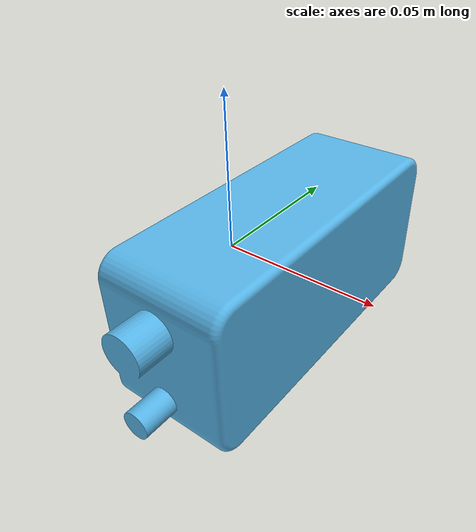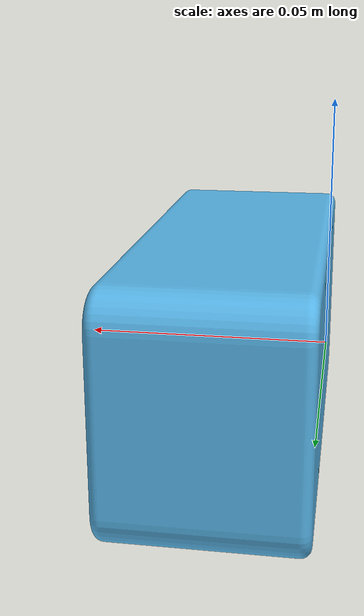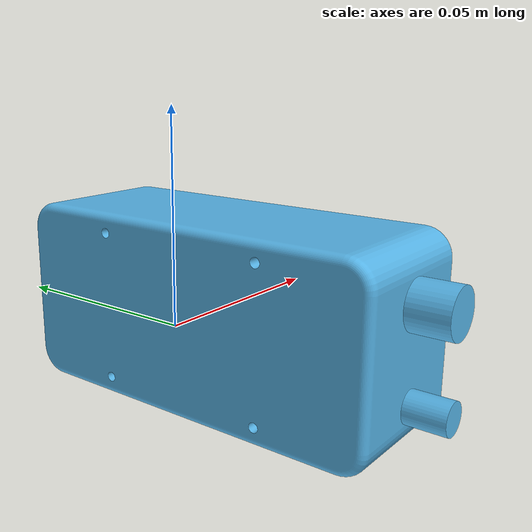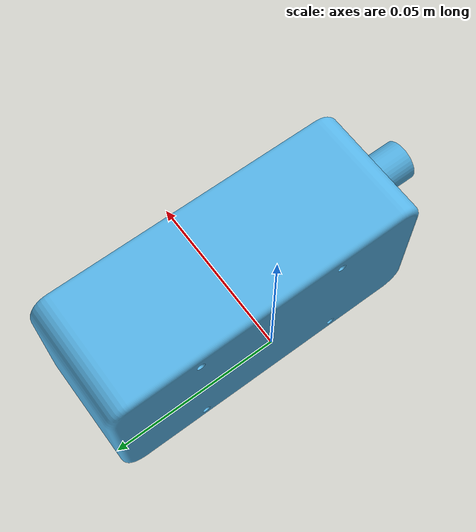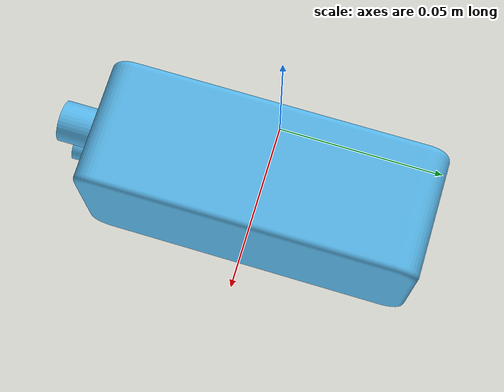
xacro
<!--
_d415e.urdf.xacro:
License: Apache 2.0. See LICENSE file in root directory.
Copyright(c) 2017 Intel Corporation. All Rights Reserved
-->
<?xml version="1.0"?>
<robot name="realsense2_camera" xmlns:xacro="http://ros.org/wiki/xacro">
  <xacro:include filename="$(find realsense_description)/urdf/_d415e.urdf.xacro"/>

  <!--you only need the following xacro if you want to simulate the camera in gazebo-->
  <xacro:include filename="$(find realsense_description)/urdf/_d415.gazebo.xacro" />

  <link name="base_link" />
  <sensor_d415e parent="base_link" prefix="test_">
    <origin xyz="0 0 0" rpy="0 0 0"/>
  </sensor_d415e>

  <!--call the included xacro if you want to simulate the camera in gazebo-->
  <xacro:d415_realsense_gazebo prefix="test_"
  color_width="1920" color_height="1080"
  color_update_rate="20" depth_update_rate="10"/>
</robot>

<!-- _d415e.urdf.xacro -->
<robot name="sensor_d415e" xmlns:xacro="http://ros.org/wiki/xacro">
  <xacro:macro name="sensor_d415e" params="parent *origin prefix">

    <!-- The following values are approximate, and the camera node
     publishing TF values with actual calibrated camera extrinsic values -->

<xacro:property name="d415_cam_depth_px" value="0.0"/>
<xacro:property name="d415_cam_depth_py" value="0.0"/>
<xacro:property name="d415_cam_depth_pz" value="0.0"/>

    <!-- The following values model the aluminum peripherial case for the
    d415 camera, with the camera joint represented by the actual
  	peripherial camera tripod mount -->
    <!-- camera body, with origin at bottom screw mount -->
    <joint name="${prefix}camera_joint" type="fixed">
      <xacro:insert_block name="origin" />
      <parent link="${parent}"/>
      <child link="${prefix}camera_mount_link" />
    </joint>

    <link name="${prefix}camera_mount_link">
      <visual>
        <origin xyz="0.0 0.0 0.0" rpy="0 0 0"/>
        <geometry>
          <mesh filename="package://realsense_description/meshes/visual/FRAMOS_D415e_Camera.STL"  scale="0.001 0.001 0.001" />
        </geometry>
      </visual>
      <collision>
        <origin xyz="0.0 0.0 0.0" rpy="0 0 0"/>
        <geometry>
        <mesh filename="package://realsense_description/meshes/visual/FRAMOS_D415e_Camera.STL"  scale="0.001 0.001 0.001" />
        </geometry>
      </collision>
      <inertial>
        <!-- The following are not reliable values, and should not be used for modeling -->
        <mass value="0.564" />
        <origin xyz="0 0 0" />
        <inertia ixx="0.003881243" ixy="0.0" ixz="0.0" iyy="0.000498940" iyz="0.0" izz="0.003879257" />
      </inertial>
    </link>

    <link name="${prefix}camera_link"/>
    <joint name="${prefix}camera_link_joint" type="fixed">
      <origin xyz="0.05 0.03 -0.01" rpy="0.05 0 0"/>
      <parent link="${prefix}camera_mount_link"/>
      <child link="${prefix}camera_link"/>
    </joint>

  </xacro:macro>
</robot>
